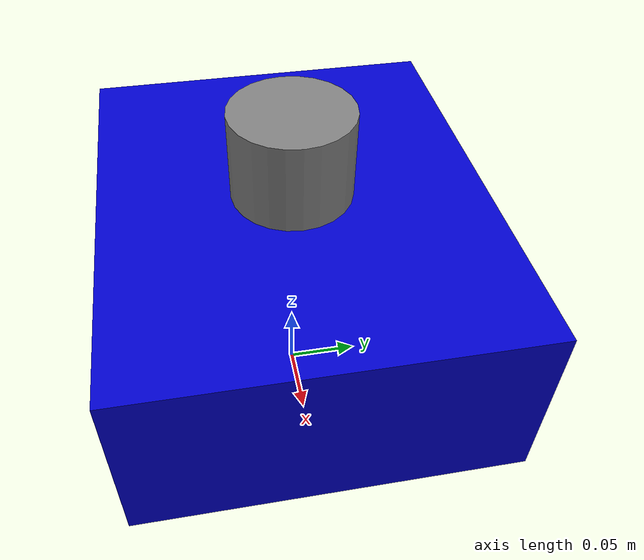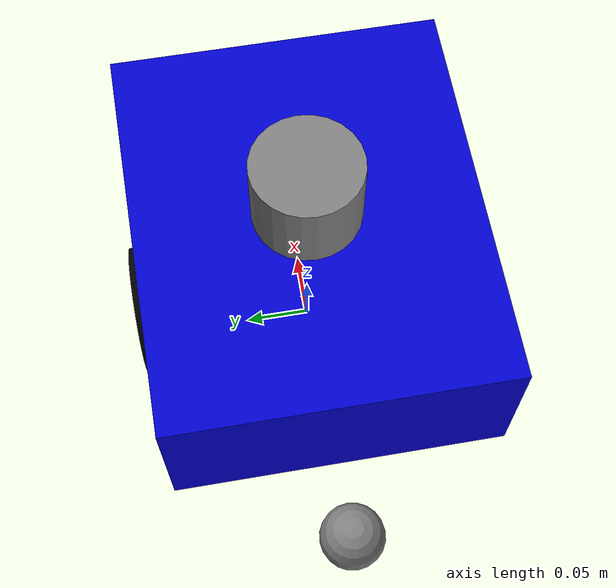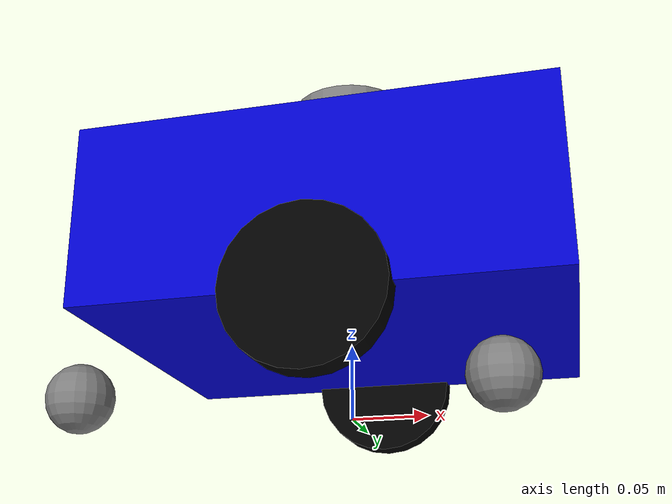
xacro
<?xml version="1.0"?>
<robot name="diff_drive_robot" xmlns:xacro="http://www.ros.org/wiki/xacro">

  <xacro:property name="wheel_radius"  value="0.05"/>
  <xacro:property name="wheel_width"   value="0.02"/>
  <xacro:property name="base_length"   value="0.30"/>
  <xacro:property name="base_width"    value="0.25"/>
  <xacro:property name="base_height"   value="0.12"/>
  <xacro:property name="caster_radius" value="0.025"/>

  <!-- ===================================================================
       MATERIALS
       =================================================================== -->
  <material name="blue">  <color rgba="0.0 0.0 0.8 1.0"/> </material>
  <material name="black"> <color rgba="0.0 0.0 0.0 1.0"/> </material>
  <material name="grey">  <color rgba="0.5 0.5 0.5 1.0"/> </material>
  <material name="red">   <color rgba="0.8 0.0 0.0 1.0"/> </material>
  <material name="white"> <color rgba="0.9 0.9 0.9 1.0"/> </material>

  <link name="base_footprint"/>

  <!-- base_link origin is at ground level (same as base_footprint).
       The chassis visual/collision is raised inside base_link so the
       bottom of the box sits at wheel_radius above the ground. -->
  <joint name="base_footprint_joint" type="fixed">
    <parent link="base_footprint"/>
    <child  link="base_link"/>
    <origin xyz="0 0 0" rpy="0 0 0"/>
  </joint>

  <link name="base_link">
    <visual>
      <origin xyz="0 0 ${wheel_radius + base_height/2}" rpy="0 0 0"/>
      <geometry>
        <box size="${base_length} ${base_width} ${base_height}"/>
      </geometry>
      <material name="blue"/>
    </visual>
    <collision>
      <origin xyz="0 0 ${wheel_radius + base_height/2}" rpy="0 0 0"/>
      <geometry>
        <box size="${base_length} ${base_width} ${base_height}"/>
      </geometry>
    </collision>
    <inertial>
      <!-- Inertia tensor for a solid box: m=5 kg -->
      <origin xyz="0 0 ${wheel_radius + base_height/2}" rpy="0 0 0"/>
      <mass value="5.0"/>
      <inertia
        ixx="${(1.0/12.0)*5.0*(base_width*base_width + base_height*base_height)}"
        ixy="0.0" ixz="0.0"
        iyy="${(1.0/12.0)*5.0*(base_length*base_length + base_height*base_height)}"
        iyz="0.0"
        izz="${(1.0/12.0)*5.0*(base_length*base_length + base_width*base_width)}"/>
    </inertial>
  </link>

  <link name="left_wheel">
    <visual>
      <origin xyz="0 0 0" rpy="1.5707 0 0"/>
      <geometry>
        <cylinder radius="${wheel_radius}" length="${wheel_width}"/>
      </geometry>
      <material name="black"/>
    </visual>
    <collision>
      <origin xyz="0 0 0" rpy="1.5707 0 0"/>
      <geometry>
        <cylinder radius="${wheel_radius}" length="${wheel_width}"/>
      </geometry>
    </collision>
    <inertial>
      <!-- Solid cylinder: m=0.5 kg -->
      <origin xyz="0 0 0" rpy="0 0 0"/>
      <mass value="0.5"/>
      <inertia
        ixx="${(1.0/12.0)*0.5*(3.0*wheel_radius*wheel_radius + wheel_width*wheel_width)}"
        ixy="0.0" ixz="0.0"
        iyy="${(1.0/12.0)*0.5*(3.0*wheel_radius*wheel_radius + wheel_width*wheel_width)}"
        iyz="0.0"
        izz="${0.5*0.5*wheel_radius*wheel_radius}"/>
    </inertial>
  </link>

  <joint name="left_wheel_joint" type="continuous">
    <parent link="base_link"/>
    <child  link="left_wheel"/>
    <!-- Axle centre: centred fore-aft, offset to left side, at wheel_radius height -->
    <origin xyz="0 ${base_width/2} ${wheel_radius}" rpy="0 0 0"/>
    <axis xyz="0 1 0"/>
  </joint>

  <!-- ===================================================================
       RIGHT WHEEL
       =================================================================== -->
  <link name="right_wheel">
    <visual>
      <origin xyz="0 0 0" rpy="1.5707 0 0"/>
      <geometry>
        <cylinder radius="${wheel_radius}" length="${wheel_width}"/>
      </geometry>
      <material name="black"/>
    </visual>
    <collision>
      <origin xyz="0 0 0" rpy="1.5707 0 0"/>
      <geometry>
        <cylinder radius="${wheel_radius}" length="${wheel_width}"/>
      </geometry>
    </collision>
    <inertial>
      <origin xyz="0 0 0" rpy="0 0 0"/>
      <mass value="0.5"/>
      <inertia
        ixx="${(1.0/12.0)*0.5*(3.0*wheel_radius*wheel_radius + wheel_width*wheel_width)}"
        ixy="0.0" ixz="0.0"
        iyy="${(1.0/12.0)*0.5*(3.0*wheel_radius*wheel_radius + wheel_width*wheel_width)}"
        iyz="0.0"
        izz="${0.5*0.5*wheel_radius*wheel_radius}"/>
    </inertial>
  </link>

  <joint name="right_wheel_joint" type="continuous">
    <parent link="base_link"/>
    <child  link="right_wheel"/>
    <!-- Mirror of left: offset to right side -->
    <origin xyz="0 -${base_width/2} ${wheel_radius}" rpy="0 0 0"/>
    <axis xyz="0 1 0"/>
  </joint>

  <link name="caster_front">
    <visual>
      <origin xyz="0 0 0" rpy="0 0 0"/>
      <geometry><sphere radius="${caster_radius}"/></geometry>
      <material name="grey"/>
    </visual>
    <collision>
      <origin xyz="0 0 0" rpy="0 0 0"/>
      <geometry><sphere radius="${caster_radius}"/></geometry>
    </collision>
    <inertial>
      <origin xyz="0 0 0" rpy="0 0 0"/>
      <mass value="0.1"/>
      <inertia
        ixx="${(2.0/5.0)*0.1*caster_radius*caster_radius}"
        ixy="0.0" ixz="0.0"
        iyy="${(2.0/5.0)*0.1*caster_radius*caster_radius}"
        iyz="0.0"
        izz="${(2.0/5.0)*0.1*caster_radius*caster_radius}"/>
    </inertial>
  </link>

  <joint name="caster_front_joint" type="fixed">
    <parent link="base_link"/>
    <child  link="caster_front"/>
    <origin xyz="${base_length/2 - 0.05} 0 ${wheel_radius/2}" rpy="0 0 0"/>
  </joint>

  <!-- ===================================================================
       REAR CASTER
       =================================================================== -->
  <link name="caster_rear">
    <visual>
      <origin xyz="0 0 0" rpy="0 0 0"/>
      <geometry><sphere radius="${caster_radius}"/></geometry>
      <material name="grey"/>
    </visual>
    <collision>
      <origin xyz="0 0 0" rpy="0 0 0"/>
      <geometry><sphere radius="${caster_radius}"/></geometry>
    </collision>
    <inertial>
      <origin xyz="0 0 0" rpy="0 0 0"/>
      <mass value="0.1"/>
      <inertia
        ixx="${(2.0/5.0)*0.1*caster_radius*caster_radius}"
        ixy="0.0" ixz="0.0"
        iyy="${(2.0/5.0)*0.1*caster_radius*caster_radius}"
        iyz="0.0"
        izz="${(2.0/5.0)*0.1*caster_radius*caster_radius}"/>
    </inertial>
  </link>

  <joint name="caster_rear_joint" type="fixed">
    <parent link="base_link"/>
    <child  link="caster_rear"/>
    <origin xyz="-${base_length/2 + 0.05} 0 ${wheel_radius/2}" rpy="0 0 0"/>
  </joint>

  <!-- ===================================================================
       IMU LINK  — mounted on top of chassis
       =================================================================== -->
  <link name="imu_link">
    <visual>
      <origin xyz="0 0 0" rpy="0 0 0"/>
      <geometry><box size="0.04 0.04 0.02"/></geometry>
      <material name="red"/>
    </visual>
    <collision>
      <origin xyz="0 0 0" rpy="0 0 0"/>
      <geometry><box size="0.04 0.04 0.02"/></geometry>
    </collision>
    <inertial>
      <origin xyz="0 0 0" rpy="0 0 0"/>
      <mass value="0.01"/>
      <inertia ixx="0.000001" ixy="0.0" ixz="0.0"
               iyy="0.000001" iyz="0.0"
               izz="0.000001"/>
    </inertial>
  </link>

  <joint name="imu_joint" type="fixed">
    <parent link="base_link"/>
    <child  link="imu_link"/>
    <!-- Top surface of chassis -->
    <origin xyz="0 0 ${wheel_radius + base_height}" rpy="0 0 0"/>
  </joint>

  <link name="lidar_link">
    <visual>
      <origin xyz="0 0 0" rpy="0 0 0"/>
      <geometry><cylinder radius="0.04" length="0.06"/></geometry>
      <material name="grey"/>
    </visual>
    <collision>
      <origin xyz="0 0 0" rpy="0 0 0"/>
      <geometry><cylinder radius="0.04" length="0.06"/></geometry>
    </collision>
    <inertial>
      <origin xyz="0 0 0" rpy="0 0 0"/>
      <mass value="0.1"/>
      <inertia ixx="0.000043" ixy="0.0" ixz="0.0"
               iyy="0.000043" iyz="0.0"
               izz="0.000080"/>
    </inertial>
  </link>

  <joint name="lidar_joint" type="fixed">
    <parent link="base_link"/>
    <child  link="lidar_link"/>
    <!-- 3 cm above top of chassis -->
    <origin xyz="0 0 ${wheel_radius + base_height + 0.03}" rpy="0 0 0"/>
  </joint>

  <!-- ===================================================================
       GAZEBO PLUGINS
       =================================================================== -->

  <!-- Differential drive controller
       wheel_separation = base_width  (distance between wheel centres)
       wheel_diameter   = 2 * wheel_radius                              -->
  <gazebo>
    <plugin name="diff_drive_controller" filename="libgazebo_ros_diff_drive.so">
      <ros>
        <namespace>/</namespace>
      </ros>
      <left_joint>left_wheel_joint</left_joint>
      <right_joint>right_wheel_joint</right_joint>
      <!-- Must match URDF geometry exactly -->
      <wheel_separation>${base_width}</wheel_separation>
      <wheel_diameter>${2 * wheel_radius}</wheel_diameter>
      <max_wheel_torque>20</max_wheel_torque>
      <max_wheel_acceleration>1.0</max_wheel_acceleration>
      <command_topic>cmd_vel</command_topic>
      <publish_odom>true</publish_odom>
      <publish_odom_tf>true</publish_odom_tf>
      <publish_wheel_tf>true</publish_wheel_tf>
      <odometry_topic>odom</odometry_topic>
      <odometry_frame>odom</odometry_frame>
      <!-- Nav2 convention: odom → base_link -->
      <robot_base_frame>base_link</robot_base_frame>
    </plugin>
  </gazebo>

  <!-- IMU sensor plugin — publishes to /imu -->
  <gazebo reference="imu_link">
    <sensor name="imu_sensor" type="imu">
      <always_on>true</always_on>
      <update_rate>50</update_rate>
      <visualize>true</visualize>
      <plugin filename="libgazebo_ros_imu_sensor.so" name="imu_plugin">
        <ros>
          <namespace>/</namespace>
          <remapping>~/out:=imu</remapping>
        </ros>
        <initial_orientation_as_reference>false</initial_orientation_as_reference>
      </plugin>
    </sensor>
  </gazebo>

  <!-- LIDAR sensor plugin — publishes to /scan -->
  <gazebo reference="lidar_link">
    <sensor name="lidar_sensor" type="ray">
      <always_on>true</always_on>
      <visualize>true</visualize>
      <update_rate>10</update_rate>
      <ray>
        <scan>
          <horizontal>
            <samples>360</samples>
            <resolution>1</resolution>
            <min_angle>-3.14159</min_angle>
            <max_angle>3.14159</max_angle>
          </horizontal>
        </scan>
        <range>
          <min>0.12</min>
          <max>10.0</max>
          <resolution>0.01</resolution>
        </range>
        <noise>
          <type>gaussian</type>
          <mean>0.0</mean>
          <stddev>0.01</stddev>
        </noise>
      </ray>
      <plugin filename="libgazebo_ros_ray_sensor.so" name="lidar_plugin">
        <ros>
          <namespace>/</namespace>
          <remapping>~/out:=scan</remapping>
        </ros>
        <output_type>sensor_msgs/LaserScan</output_type>
        <frame_name>lidar_link</frame_name>
      </plugin>
    </sensor>
  </gazebo>

  <!-- Caster friction = 0 so they slide freely without fighting the drive wheels -->
  <gazebo reference="caster_front">
    <material>Gazebo/Grey</material>
    <mu1>0.0</mu1>
    <mu2>0.0</mu2>
  </gazebo>

  <gazebo reference="caster_rear">
    <material>Gazebo/Grey</material>
    <mu1>0.0</mu1>
    <mu2>0.0</mu2>
  </gazebo>

  <!-- Colours in Gazebo -->
  <gazebo reference="base_link">
    <material>Gazebo/Blue</material>
  </gazebo>
  <gazebo reference="left_wheel">
    <material>Gazebo/Black</material>
  </gazebo>
  <gazebo reference="right_wheel">
    <material>Gazebo/Black</material>
  </gazebo>
  <gazebo reference="imu_link">
    <material>Gazebo/Red</material>
  </gazebo>
  <gazebo reference="lidar_link">
    <material>Gazebo/Grey</material>
  </gazebo>

</robot>
